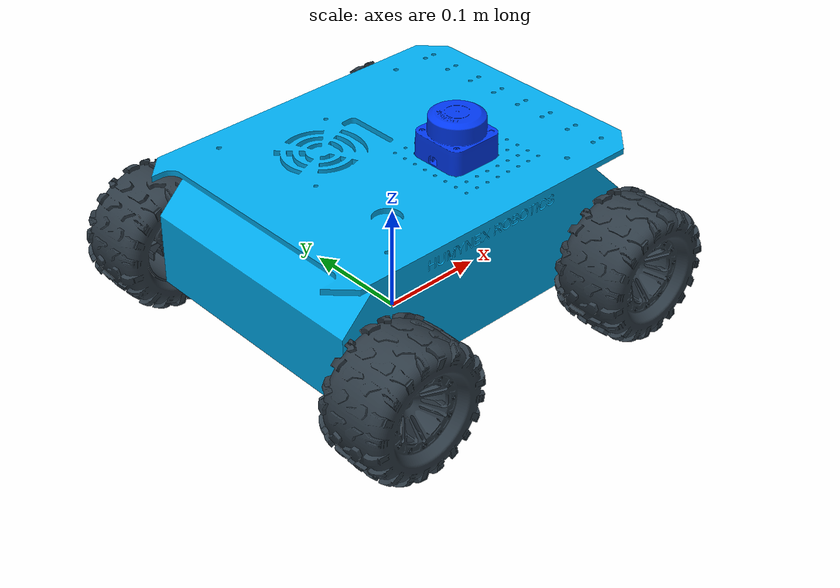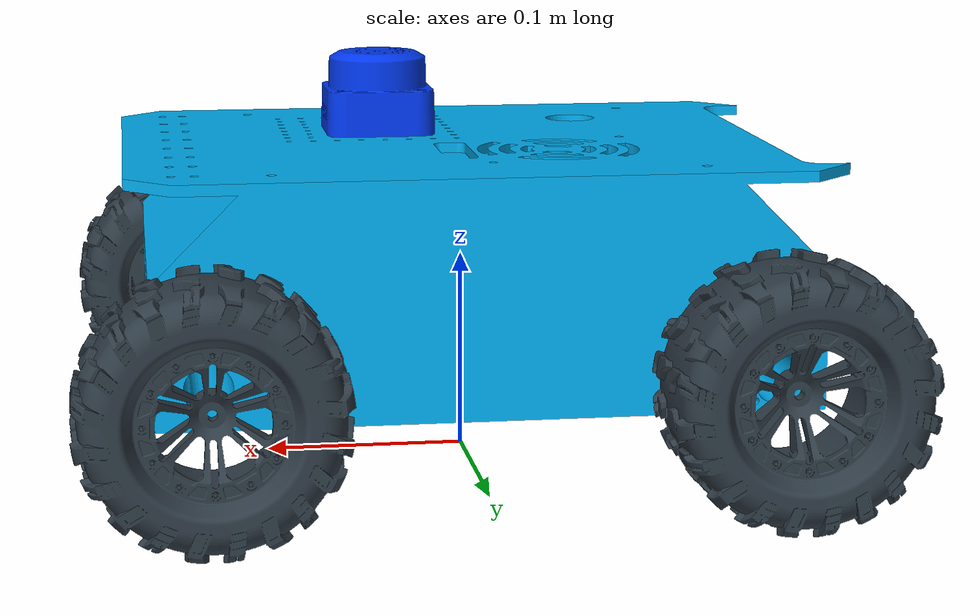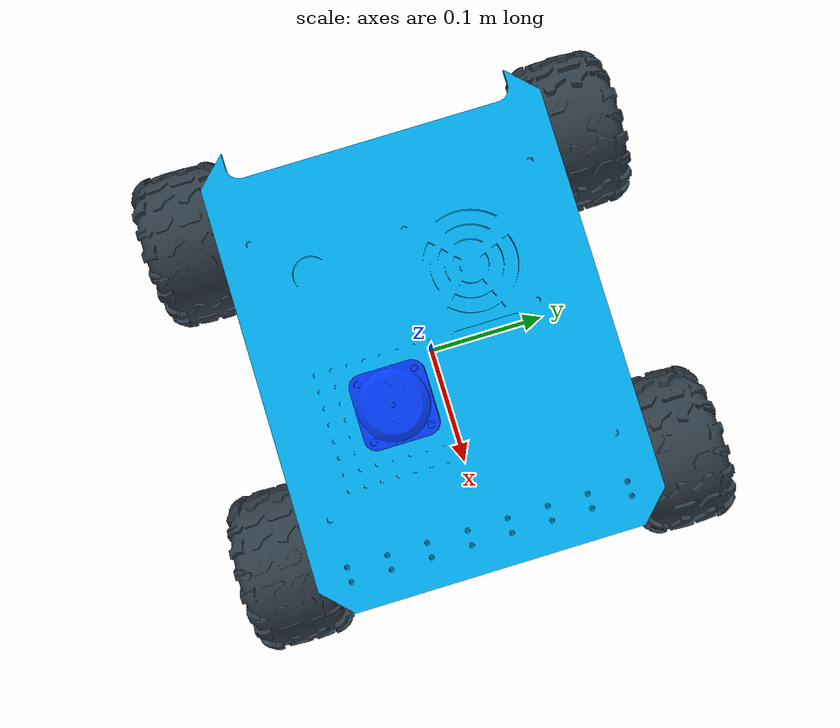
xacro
<?xml version="1.0" ?>
<!--
  Developed by HUMYNEX ROBOTICS
  Copyright: (c) 2026 HUMYNEX ROBOTICS. All rights reserved.
  Contact: humynexrobotics@gmail.com | +91 8714358646
-->
<robot name="mbot" xmlns:xacro="http://www.ros.org/wiki/xacro">

<xacro:include filename="$(find mbot_description)/urdf/materials.xacro" />
<xacro:include filename="$(find mbot_description)/urdf/mbot_gazebo.xacro" />

<link name="base_footprint"/>
<joint name="base_joint" type="fixed">
  <parent link="base_footprint"/>
  <child link="base_link"/>
  <origin xyz="0 0 0" rpy="0 0 0"/>
</joint>

<link name="base_link">
  <inertial>
    <origin xyz="0.00284967111315094 0.00019217625061831 0.1364710422860175" rpy="0 0 0"/>
    <mass value="2.917350580966256"/>
    <inertia ixx="0.013161" iyy="0.005216" izz="0.018272" ixy="3.1e-05" iyz="-0.0" ixz="0.0"/>
  </inertial>
  <visual>
    <origin xyz="0 0 0" rpy="0 0 0"/>
    <geometry>
      <mesh filename="package://mbot_description/meshes/base_link.stl" scale="0.001 0.001 0.001"/>
    </geometry>
    <material name="cyan"/>
  </visual>
  <collision>
    <origin xyz="0 0 0" rpy="0 0 0"/>
    <geometry>
      <mesh filename="package://mbot_description/meshes/base_link.stl" scale="0.001 0.001 0.001"/>
    </geometry>
  </collision>
</link>

<link name="rear_left_wheel_1">
  <inertial>
    <origin xyz="0.14882337797264744 -0.08743111065872872 -0.15848924541749176" rpy="0 0 0"/>
    <mass value="0.5352307065248498"/>
    <inertia ixx="0.000808" iyy="0.001256" izz="0.000812" ixy="-0.0" iyz="-0.0" ixz="1e-06"/>
  </inertial>
  <visual>
    <origin xyz="0.282453 -0.244241 -0.220256" rpy="0 0 0"/>
    <geometry>
      <mesh filename="package://mbot_description/meshes/rear_left_wheel_1.stl" scale="0.001 0.001 0.001"/>
    </geometry>
    <material name="grey"/>
  </visual>
  <collision>
    <origin xyz="0.282453 -0.244241 -0.220256" rpy="0 0 0"/>
    <geometry>
      <mesh filename="package://mbot_description/meshes/rear_left_wheel_1.stl" scale="0.001 0.001 0.001"/>
    </geometry>
  </collision>
</link>

<link name="rear_right_wheel_1">
  <inertial>
    <origin xyz="0.14882434661686864 -0.16616823391426058 -0.15890097996488106" rpy="0 0 0"/>
    <mass value="0.5352307065248498"/>
    <inertia ixx="0.000808" iyy="0.001256" izz="0.000812" ixy="0.0" iyz="-0.0" ixz="-1e-06"/>
  </inertial>
  <visual>
    <origin xyz="0.282458 -0.009359 -0.220257" rpy="0 0 0"/>
    <geometry>
      <mesh filename="package://mbot_description/meshes/rear_right_wheel_1.stl" scale="0.001 0.001 0.001"/>
    </geometry>
    <material name="grey"/>
  </visual>
  <collision>
    <origin xyz="0.282458 -0.009359 -0.220257" rpy="0 0 0"/>
    <geometry>
      <mesh filename="package://mbot_description/meshes/rear_right_wheel_1.stl" scale="0.001 0.001 0.001"/>
    </geometry>
  </collision>
</link>

<link name="front_left_wheel_1">
  <inertial>
    <origin xyz="0.14882587119445223 -0.0874312397994979 -0.1584888308152344" rpy="0 0 0"/>
    <mass value="0.5352307065248498"/>
    <inertia ixx="0.000808" iyy="0.001256" izz="0.000812" ixy="-0.0" iyz="-0.0" ixz="1e-06"/>
  </inertial>
  <visual>
    <origin xyz="0.015247 -0.244241 -0.220254" rpy="0 0 0"/>
    <geometry>
      <mesh filename="package://mbot_description/meshes/front_left_wheel_1.stl" scale="0.001 0.001 0.001"/>
    </geometry>
    <material name="grey"/>
  </visual>
  <collision>
    <origin xyz="0.015247 -0.244241 -0.220254" rpy="0 0 0"/>
    <geometry>
      <mesh filename="package://mbot_description/meshes/front_left_wheel_1.stl" scale="0.001 0.001 0.001"/>
    </geometry>
  </collision>
</link>

<link name="front_right_wheel_1">
  <inertial>
    <origin xyz="0.1488194636228566 -0.16616789675663227 -0.15890140097612748" rpy="0 0 0"/>
    <mass value="0.5352307065248498"/>
    <inertia ixx="0.000808" iyy="0.001256" izz="0.000812" ixy="0.0" iyz="-0.0" ixz="-1e-06"/>
  </inertial>
  <visual>
    <origin xyz="0.015241 -0.009358 -0.220256" rpy="0 0 0"/>
    <geometry>
      <mesh filename="package://mbot_description/meshes/front_right_wheel_1.stl" scale="0.001 0.001 0.001"/>
    </geometry>
    <material name="grey"/>
  </visual>
  <collision>
    <origin xyz="0.015241 -0.009358 -0.220256" rpy="0 0 0"/>
    <geometry>
      <mesh filename="package://mbot_description/meshes/front_right_wheel_1.stl" scale="0.001 0.001 0.001"/>
    </geometry>
  </collision>
</link>

<link name="lidar_1">
  <inertial>
    <origin xyz="8.402447596823903e-05 -9.41552620599348e-05 0.013718351026483333" rpy="0 0 0"/>
    <mass value="0.2536750031500938"/>
    <inertia ixx="0.000111" iyy="0.000111" izz="0.000156" ixy="-0.0" iyz="-0.0" ixz="0.0"/>
  </inertial>
  <visual>
    <origin xyz="-0.038214 0.038166 -0.159258" rpy="0 0 0"/>
    <geometry>
      <mesh filename="package://mbot_description/meshes/lidar_1.stl" scale="0.001 0.001 0.001"/>
    </geometry>
    <material name="teal"/>
  </visual>
  <collision>
    <origin xyz="-0.038214 0.038166 -0.159258" rpy="0 0 0"/>
    <geometry>
      <mesh filename="package://mbot_description/meshes/lidar_1.stl" scale="0.001 0.001 0.001"/>
    </geometry>
  </collision>
</link>

<joint name="rear_left_wheel_joint" type="continuous">
  <origin xyz="-0.282453 0.244241 0.220256" rpy="0 0 0"/>
  <parent link="base_link"/>
  <child link="rear_left_wheel_1"/>
  <axis xyz="-2.9e-05 -1.0 1.2e-05"/>
</joint>

<joint name="rear_right_wheel_joint" type="continuous">
  <origin xyz="-0.282458 0.009359 0.220257" rpy="0 0 0"/>
  <parent link="base_link"/>
  <child link="rear_right_wheel_1"/>
  <axis xyz="4.5e-05 -1.0 1.7e-05"/>
</joint>

<joint name="front_left_wheel_joint" type="continuous">
  <origin xyz="-0.015247 0.244241 0.220254" rpy="0 0 0"/>
  <parent link="base_link"/>
  <child link="front_left_wheel_1"/>
  <axis xyz="-7.1e-05 -1.0 1.7e-05"/>
</joint>

<joint name="front_right_wheel_joint" type="continuous">
  <origin xyz="-0.015241 0.009358 0.220256" rpy="0 0 0"/>
  <parent link="base_link"/>
  <child link="front_right_wheel_1"/>
  <axis xyz="-8e-05 -1.0 3e-06"/>
</joint>

<joint name="lidar_joint" type="fixed">
  <origin xyz="0.038214 -0.038166 0.159258" rpy="0 0 0"/>
  <parent link="base_link"/>
  <child link="lidar_1"/>
</joint>

</robot>

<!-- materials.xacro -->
<robot name="mbot" xmlns:xacro="http://www.ros.org/wiki/xacro" >

	<material name="white">
		<color rgba="1 1 1 1"/>
	</material>

	<material name="grey">
		<color rgba="0.18 0.23 0.27 1.0"/>
	</material>

	<material name="black">
		<color rgba="0 0 0 1"/>
	</material>

	<material name="teal">
		<color rgba="0.0 0.22 0.94 1.0"/>
	</material>

	<material name="cyan">
		<color rgba="0.0 0.68 0.94 1.0"/>
	</material>

	<material name="green">
		<color rgba="0 0.5 0.1 1"/>
	</material>

</robot>
